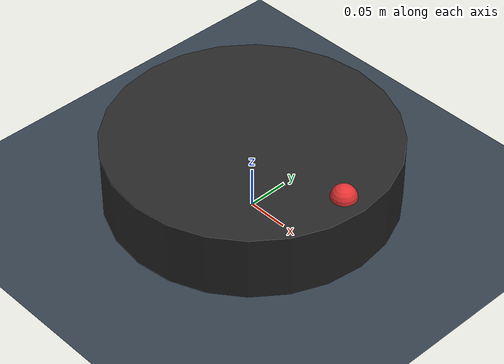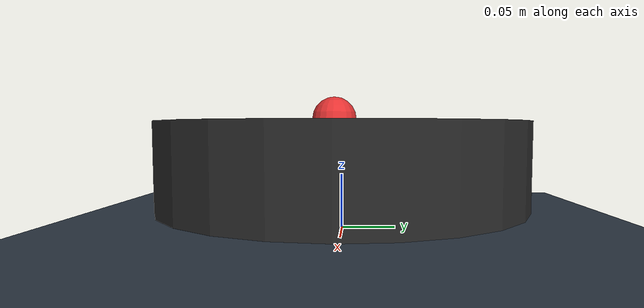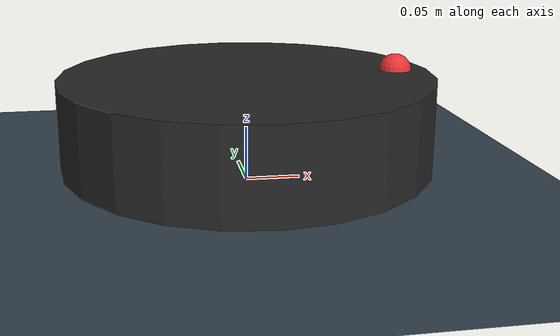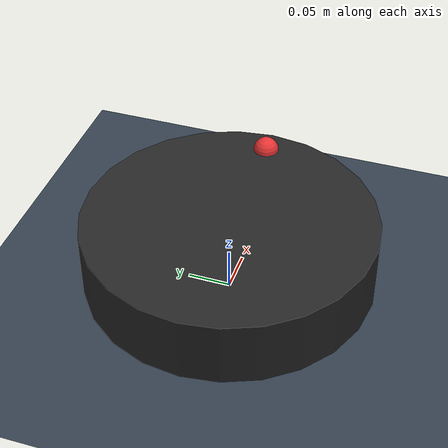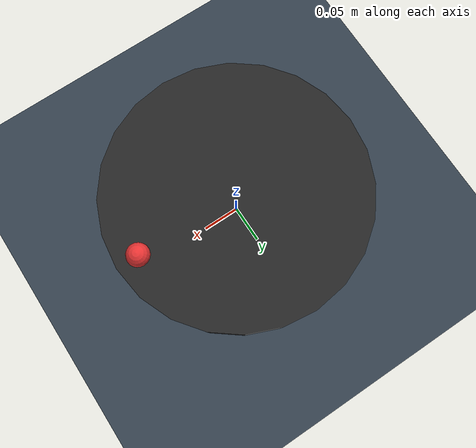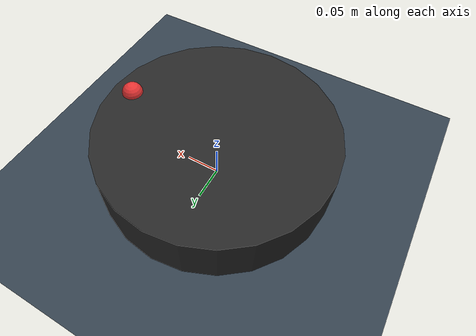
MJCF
<mujoco model="roomba_diffdrive">
  <compiler angle="radian" inertiafromgeom="true"/>
  <option timestep="0.002" gravity="0 0 -9.81"/>

  <!-- Lighting / rendering -->
  <visual>
    <!-- Camera headlight -->
    <headlight diffuse="0.6 0.6 0.6" ambient="0.25 0.25 0.25" specular="0.2 0.2 0.2"/>
    <!-- Atmosphere -->
    <rgba haze="0.15 0.20 0.25 1"/>
    <!-- Default camera angle -->
    <global azimuth="-120" elevation="-20"/>
  </visual>

  <default>
    <!-- Make contacts stable and wheels grippy -->
    <geom friction="1.2 0.05 0.001" condim="4" solref="0.01 1" solimp="0.9 0.95 0.001"/>
    <joint damping="0.05"/>
  </default>

  <!-- Wheel actuator/joint defaults, like TB3 -->
  <default>
    <default class="wheel">
      <joint type="hinge" limited="false" frictionloss="0.05" armature="0.01"/>
      <!-- ctrl is desired wheel ang vel (rad/s) -->
      <velocity kv="8" ctrlrange="-20 20" ctrllimited="true"/>
    </default>
    <default class="wheel_left">
      <!-- wheel spins around its axle -->
      <joint axis="0 1 0"/>
    </default>
    <default class="wheel_right">
      <joint axis="0 1 0"/>
    </default>
  </default>

  <worldbody>
    <!-- Scene lights -->
    <light name="key"  pos="1.5  1.5 2.5" dir="-1 -1 -2" directional="true"
           diffuse="0.8 0.8 0.8" specular="0.2 0.2 0.2"/>
    <light name="fill" pos="-1.5 1.0 2.0" dir=" 1 -0.5 -1.5" directional="true"
           diffuse="0.4 0.4 0.4" specular="0.1 0.1 0.1"/>

    <!-- Floor -->
    <geom name="floor" type="plane" size="5 5 0.1" rgba="0.2 0.25 0.3 1"/>

    <!-- Base -->
    <body name="base" pos="0 0 0.06">
      <freejoint name="base_joint"/>

      <!-- Circular chassis: cylinder size = radius, half-height -->
      <geom name="chassis" type="cylinder" size="0.17 0.04" rgba="0.15 0.15 0.15 1"/>

      <!-- Small front marker so you can see heading -->
      <geom name="front_marker" type="sphere" pos="0.14 0 0.04" size="0.015"
            rgba="0.9 0.2 0.2 1" contype="0" conaffinity="0"/>

      <!-- Left wheel -->
      <body name="wheel_left" pos="0 0.12 0.0">
        <joint name="wheel_left" class="wheel_left"/>
        <!-- wheel geom: cylinder axis is along its local Z, so rotate 90deg about Y to align with axle -->
        <geom name="g_wheel_left" type="cylinder" size="0.035 0.02"
              euler="0 1.57079632679 0" rgba="0.05 0.05 0.05 1"/>
      </body>

      <!-- Right wheel -->
      <body name="wheel_right" pos="0 -0.12 0.0">
        <joint name="wheel_right" class="wheel_right"/>
        <geom name="g_wheel_right" type="cylinder" size="0.035 0.02"
              euler="0 1.57079632679 0" rgba="0.05 0.05 0.05 1"/>
      </body>
    </body>
  </worldbody>

  <actuator>
    <velocity class="wheel_left" name="wheel_left" joint="wheel_left"/>
    <velocity class="wheel_right" name="wheel_right" joint="wheel_right"/>
  </actuator>

  <contact>
    <!-- Like TB3: avoid wheel-chassis collisions -->
    <exclude body1="base" body2="wheel_left"/>
    <exclude body1="base" body2="wheel_right"/>
  </contact>
</mujoco>
